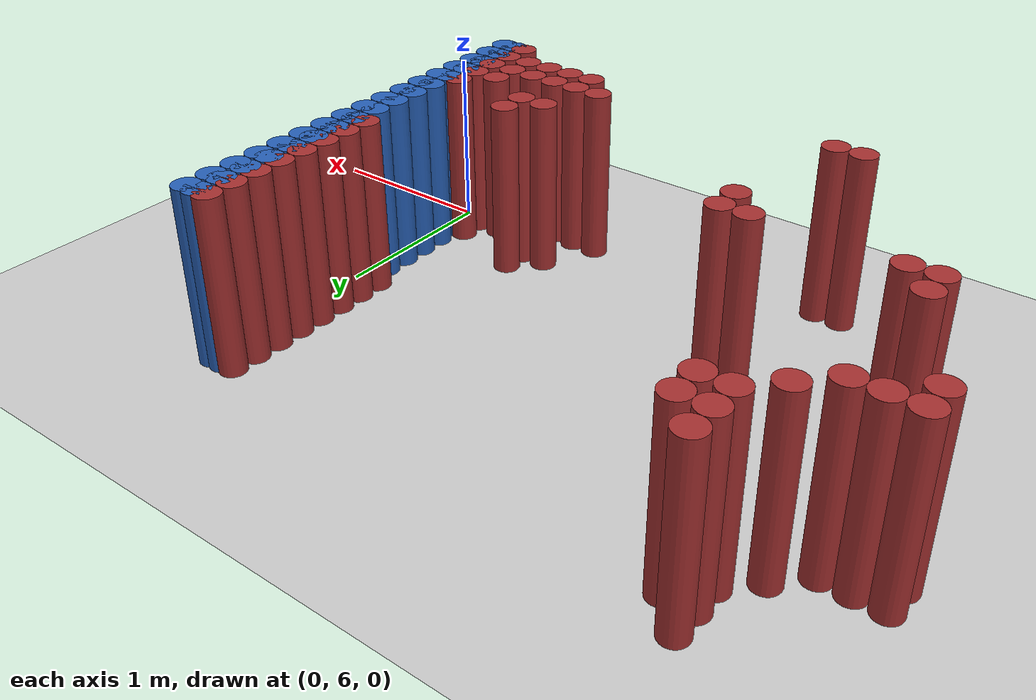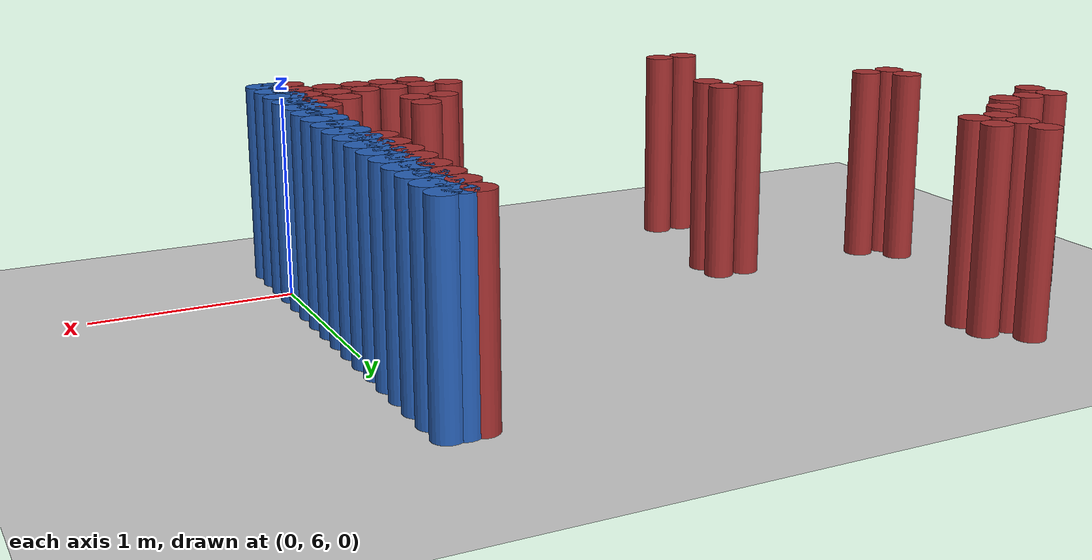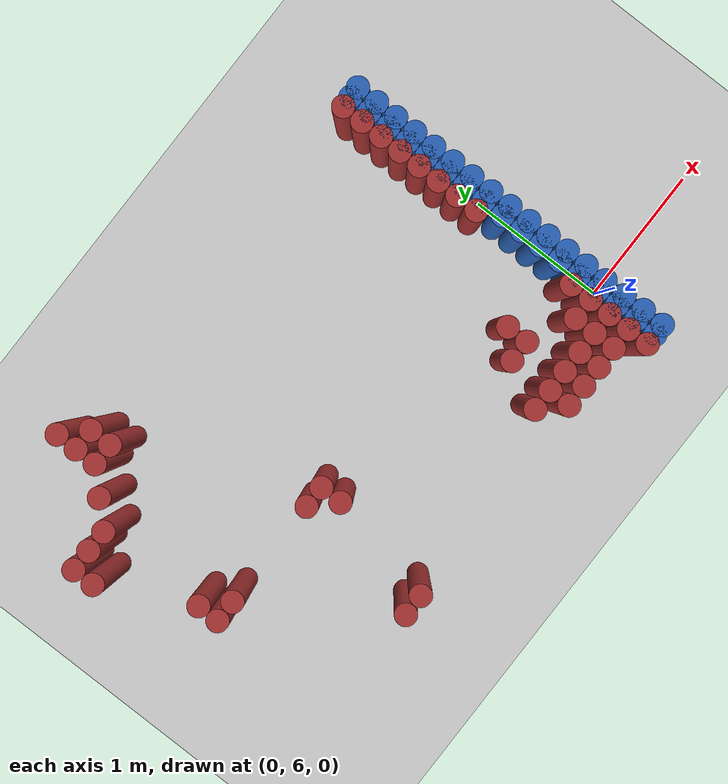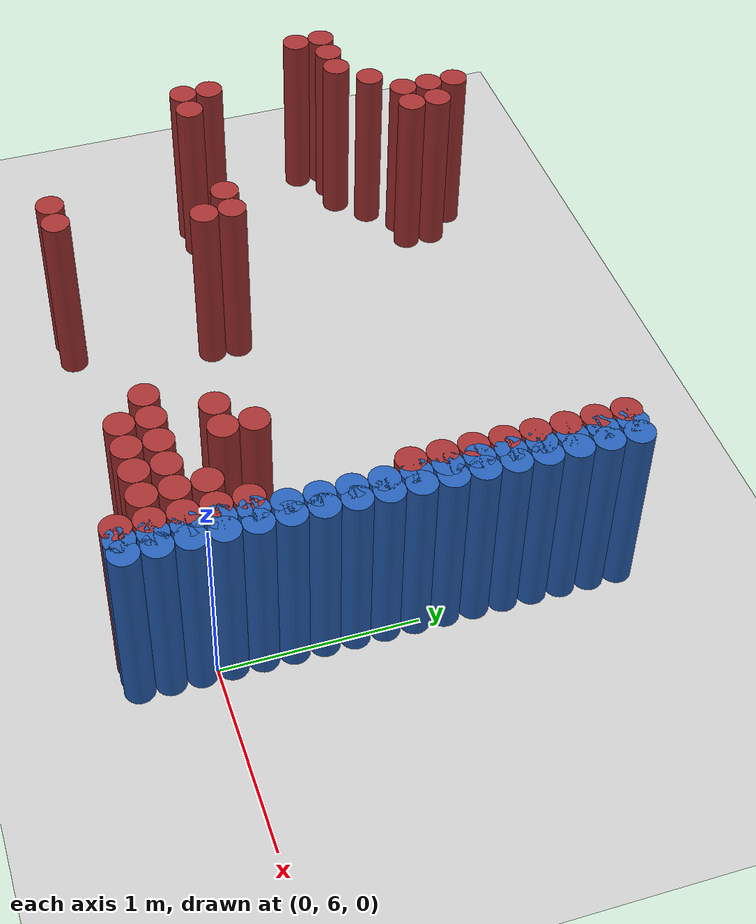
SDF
<sdf version="1.6">
 <world name="barn_world">
  <model name="ground_plane">
   <static>1</static>
   <link name="link">
    <collision name="collision">
     <geometry><plane><normal>0 0 1</normal><size>100 100</size></plane></geometry>
    </collision>
    <visual name="visual">
     <geometry><plane><normal>0 0 1</normal><size>100 100</size></plane></geometry>
     <material>
      <script><uri>file://media/materials/scripts/gazebo.material</uri><name>Gazebo/Grey</name></script>
     </material>
    </visual>
   </link>
  </model>
  <model name="unit_cylinder_185">
   <static>1</static>
   <pose>-3.4500 7.4250 0.5 0 0 0</pose>
   <link name="link">
    <collision name="collision">
     <geometry><cylinder><radius>0.075</radius><length>1</length></cylinder></geometry>
    </collision>
    <visual name="visual">
     <geometry><cylinder><radius>0.075</radius><length>1</length></cylinder></geometry>
     <material><ambient>0.648 0.192 0.192 1</ambient><diffuse>0.648 0.192 0.192 1</diffuse></material>
    </visual>
   </link>
  </model>
  <model name="unit_cylinder_186">
   <static>1</static>
   <pose>-3.4500 7.5750 0.5 0 0 0</pose>
   <link name="link">
    <collision name="collision">
     <geometry><cylinder><radius>0.075</radius><length>1</length></cylinder></geometry>
    </collision>
    <visual name="visual">
     <geometry><cylinder><radius>0.075</radius><length>1</length></cylinder></geometry>
     <material><ambient>0.648 0.192 0.192 1</ambient><diffuse>0.648 0.192 0.192 1</diffuse></material>
    </visual>
   </link>
  </model>
  <model name="unit_cylinder_187">
   <static>1</static>
   <pose>-3.3000 7.5750 0.5 0 0 0</pose>
   <link name="link">
    <collision name="collision">
     <geometry><cylinder><radius>0.075</radius><length>1</length></cylinder></geometry>
    </collision>
    <visual name="visual">
     <geometry><cylinder><radius>0.075</radius><length>1</length></cylinder></geometry>
     <material><ambient>0.648 0.192 0.192 1</ambient><diffuse>0.648 0.192 0.192 1</diffuse></material>
    </visual>
   </link>
  </model>
  <model name="unit_cylinder_189">
   <static>1</static>
   <pose>-3.1500 6.6750 0.5 0 0 0</pose>
   <link name="link">
    <collision name="collision">
     <geometry><cylinder><radius>0.075</radius><length>1</length></cylinder></geometry>
    </collision>
    <visual name="visual">
     <geometry><cylinder><radius>0.075</radius><length>1</length></cylinder></geometry>
     <material><ambient>0.648 0.192 0.192 1</ambient><diffuse>0.648 0.192 0.192 1</diffuse></material>
    </visual>
   </link>
  </model>
  <model name="unit_cylinder_190">
   <static>1</static>
   <pose>-3.1500 6.8250 0.5 0 0 0</pose>
   <link name="link">
    <collision name="collision">
     <geometry><cylinder><radius>0.075</radius><length>1</length></cylinder></geometry>
    </collision>
    <visual name="visual">
     <geometry><cylinder><radius>0.075</radius><length>1</length></cylinder></geometry>
     <material><ambient>0.648 0.192 0.192 1</ambient><diffuse>0.648 0.192 0.192 1</diffuse></material>
    </visual>
   </link>
  </model>
  <model name="unit_cylinder_191">
   <static>1</static>
   <pose>-3.1500 7.5750 0.5 0 0 0</pose>
   <link name="link">
    <collision name="collision">
     <geometry><cylinder><radius>0.075</radius><length>1</length></cylinder></geometry>
    </collision>
    <visual name="visual">
     <geometry><cylinder><radius>0.075</radius><length>1</length></cylinder></geometry>
     <material><ambient>0.648 0.192 0.192 1</ambient><diffuse>0.648 0.192 0.192 1</diffuse></material>
    </visual>
   </link>
  </model>
  <model name="unit_cylinder_194">
   <static>1</static>
   <pose>-3.0000 6.6750 0.5 0 0 0</pose>
   <link name="link">
    <collision name="collision">
     <geometry><cylinder><radius>0.075</radius><length>1</length></cylinder></geometry>
    </collision>
    <visual name="visual">
     <geometry><cylinder><radius>0.075</radius><length>1</length></cylinder></geometry>
     <material><ambient>0.648 0.192 0.192 1</ambient><diffuse>0.648 0.192 0.192 1</diffuse></material>
    </visual>
   </link>
  </model>
  <model name="unit_cylinder_195">
   <static>1</static>
   <pose>-3.0000 7.7250 0.5 0 0 0</pose>
   <link name="link">
    <collision name="collision">
     <geometry><cylinder><radius>0.075</radius><length>1</length></cylinder></geometry>
    </collision>
    <visual name="visual">
     <geometry><cylinder><radius>0.075</radius><length>1</length></cylinder></geometry>
     <material><ambient>0.648 0.192 0.192 1</ambient><diffuse>0.648 0.192 0.192 1</diffuse></material>
    </visual>
   </link>
  </model>
  <model name="unit_cylinder_197">
   <static>1</static>
   <pose>-2.8500 7.8750 0.5 0 0 0</pose>
   <link name="link">
    <collision name="collision">
     <geometry><cylinder><radius>0.075</radius><length>1</length></cylinder></geometry>
    </collision>
    <visual name="visual">
     <geometry><cylinder><radius>0.075</radius><length>1</length></cylinder></geometry>
     <material><ambient>0.648 0.192 0.192 1</ambient><diffuse>0.648 0.192 0.192 1</diffuse></material>
    </visual>
   </link>
  </model>
  <model name="unit_cylinder_198">
   <static>1</static>
   <pose>-2.8500 8.0250 0.5 0 0 0</pose>
   <link name="link">
    <collision name="collision">
     <geometry><cylinder><radius>0.075</radius><length>1</length></cylinder></geometry>
    </collision>
    <visual name="visual">
     <geometry><cylinder><radius>0.075</radius><length>1</length></cylinder></geometry>
     <material><ambient>0.648 0.192 0.192 1</ambient><diffuse>0.648 0.192 0.192 1</diffuse></material>
    </visual>
   </link>
  </model>
  <model name="unit_cylinder_199">
   <static>1</static>
   <pose>-2.8500 8.1750 0.5 0 0 0</pose>
   <link name="link">
    <collision name="collision">
     <geometry><cylinder><radius>0.075</radius><length>1</length></cylinder></geometry>
    </collision>
    <visual name="visual">
     <geometry><cylinder><radius>0.075</radius><length>1</length></cylinder></geometry>
     <material><ambient>0.648 0.192 0.192 1</ambient><diffuse>0.648 0.192 0.192 1</diffuse></material>
    </visual>
   </link>
  </model>
  <model name="unit_cylinder_200">
   <static>1</static>
   <pose>-2.7000 7.8750 0.5 0 0 0</pose>
   <link name="link">
    <collision name="collision">
     <geometry><cylinder><radius>0.075</radius><length>1</length></cylinder></geometry>
    </collision>
    <visual name="visual">
     <geometry><cylinder><radius>0.075</radius><length>1</length></cylinder></geometry>
     <material><ambient>0.648 0.192 0.192 1</ambient><diffuse>0.648 0.192 0.192 1</diffuse></material>
    </visual>
   </link>
  </model>
  <model name="unit_cylinder_201">
   <static>1</static>
   <pose>-2.7000 8.0250 0.5 0 0 0</pose>
   <link name="link">
    <collision name="collision">
     <geometry><cylinder><radius>0.075</radius><length>1</length></cylinder></geometry>
    </collision>
    <visual name="visual">
     <geometry><cylinder><radius>0.075</radius><length>1</length></cylinder></geometry>
     <material><ambient>0.648 0.192 0.192 1</ambient><diffuse>0.648 0.192 0.192 1</diffuse></material>
    </visual>
   </link>
  </model>
  <model name="unit_cylinder_202">
   <static>1</static>
   <pose>-2.4000 5.7750 0.5 0 0 0</pose>
   <link name="link">
    <collision name="collision">
     <geometry><cylinder><radius>0.075</radius><length>1</length></cylinder></geometry>
    </collision>
    <visual name="visual">
     <geometry><cylinder><radius>0.075</radius><length>1</length></cylinder></geometry>
     <material><ambient>0.648 0.192 0.192 1</ambient><diffuse>0.648 0.192 0.192 1</diffuse></material>
    </visual>
   </link>
  </model>
  <model name="unit_cylinder_204">
   <static>1</static>
   <pose>-2.2500 5.7750 0.5 0 0 0</pose>
   <link name="link">
    <collision name="collision">
     <geometry><cylinder><radius>0.075</radius><length>1</length></cylinder></geometry>
    </collision>
    <visual name="visual">
     <geometry><cylinder><radius>0.075</radius><length>1</length></cylinder></geometry>
     <material><ambient>0.648 0.192 0.192 1</ambient><diffuse>0.648 0.192 0.192 1</diffuse></material>
    </visual>
   </link>
  </model>
  <model name="unit_cylinder_205">
   <static>1</static>
   <pose>-2.2500 6.6750 0.5 0 0 0</pose>
   <link name="link">
    <collision name="collision">
     <geometry><cylinder><radius>0.075</radius><length>1</length></cylinder></geometry>
    </collision>
    <visual name="visual">
     <geometry><cylinder><radius>0.075</radius><length>1</length></cylinder></geometry>
     <material><ambient>0.648 0.192 0.192 1</ambient><diffuse>0.648 0.192 0.192 1</diffuse></material>
    </visual>
   </link>
  </model>
  <model name="unit_cylinder_209">
   <static>1</static>
   <pose>-2.1000 6.5250 0.5 0 0 0</pose>
   <link name="link">
    <collision name="collision">
     <geometry><cylinder><radius>0.075</radius><length>1</length></cylinder></geometry>
    </collision>
    <visual name="visual">
     <geometry><cylinder><radius>0.075</radius><length>1</length></cylinder></geometry>
     <material><ambient>0.648 0.192 0.192 1</ambient><diffuse>0.648 0.192 0.192 1</diffuse></material>
    </visual>
   </link>
  </model>
  <model name="unit_cylinder_210">
   <static>1</static>
   <pose>-2.1000 6.6750 0.5 0 0 0</pose>
   <link name="link">
    <collision name="collision">
     <geometry><cylinder><radius>0.075</radius><length>1</length></cylinder></geometry>
    </collision>
    <visual name="visual">
     <geometry><cylinder><radius>0.075</radius><length>1</length></cylinder></geometry>
     <material><ambient>0.648 0.192 0.192 1</ambient><diffuse>0.648 0.192 0.192 1</diffuse></material>
    </visual>
   </link>
  </model>
  <model name="unit_cylinder_214">
   <static>1</static>
   <pose>-0.9000 5.9250 0.5 0 0 0</pose>
   <link name="link">
    <collision name="collision">
     <geometry><cylinder><radius>0.075</radius><length>1</length></cylinder></geometry>
    </collision>
    <visual name="visual">
     <geometry><cylinder><radius>0.075</radius><length>1</length></cylinder></geometry>
     <material><ambient>0.648 0.192 0.192 1</ambient><diffuse>0.648 0.192 0.192 1</diffuse></material>
    </visual>
   </link>
  </model>
  <model name="unit_cylinder_217">
   <static>1</static>
   <pose>-0.7500 5.7750 0.5 0 0 0</pose>
   <link name="link">
    <collision name="collision">
     <geometry><cylinder><radius>0.075</radius><length>1</length></cylinder></geometry>
    </collision>
    <visual name="visual">
     <geometry><cylinder><radius>0.075</radius><length>1</length></cylinder></geometry>
     <material><ambient>0.648 0.192 0.192 1</ambient><diffuse>0.648 0.192 0.192 1</diffuse></material>
    </visual>
   </link>
  </model>
  <model name="unit_cylinder_218">
   <static>1</static>
   <pose>-0.7500 5.9250 0.5 0 0 0</pose>
   <link name="link">
    <collision name="collision">
     <geometry><cylinder><radius>0.075</radius><length>1</length></cylinder></geometry>
    </collision>
    <visual name="visual">
     <geometry><cylinder><radius>0.075</radius><length>1</length></cylinder></geometry>
     <material><ambient>0.648 0.192 0.192 1</ambient><diffuse>0.648 0.192 0.192 1</diffuse></material>
    </visual>
   </link>
  </model>
  <model name="unit_cylinder_219">
   <static>1</static>
   <pose>-0.7500 6.2250 0.5 0 0 0</pose>
   <link name="link">
    <collision name="collision">
     <geometry><cylinder><radius>0.075</radius><length>1</length></cylinder></geometry>
    </collision>
    <visual name="visual">
     <geometry><cylinder><radius>0.075</radius><length>1</length></cylinder></geometry>
     <material><ambient>0.648 0.192 0.192 1</ambient><diffuse>0.648 0.192 0.192 1</diffuse></material>
    </visual>
   </link>
  </model>
  <model name="unit_cylinder_227">
   <static>1</static>
   <pose>-0.6000 5.7750 0.5 0 0 0</pose>
   <link name="link">
    <collision name="collision">
     <geometry><cylinder><radius>0.075</radius><length>1</length></cylinder></geometry>
    </collision>
    <visual name="visual">
     <geometry><cylinder><radius>0.075</radius><length>1</length></cylinder></geometry>
     <material><ambient>0.648 0.192 0.192 1</ambient><diffuse>0.648 0.192 0.192 1</diffuse></material>
    </visual>
   </link>
  </model>
  <model name="unit_cylinder_228">
   <static>1</static>
   <pose>-0.6000 5.9250 0.5 0 0 0</pose>
   <link name="link">
    <collision name="collision">
     <geometry><cylinder><radius>0.075</radius><length>1</length></cylinder></geometry>
    </collision>
    <visual name="visual">
     <geometry><cylinder><radius>0.075</radius><length>1</length></cylinder></geometry>
     <material><ambient>0.648 0.192 0.192 1</ambient><diffuse>0.648 0.192 0.192 1</diffuse></material>
    </visual>
   </link>
  </model>
  <model name="unit_cylinder_229">
   <static>1</static>
   <pose>-0.6000 6.2250 0.5 0 0 0</pose>
   <link name="link">
    <collision name="collision">
     <geometry><cylinder><radius>0.075</radius><length>1</length></cylinder></geometry>
    </collision>
    <visual name="visual">
     <geometry><cylinder><radius>0.075</radius><length>1</length></cylinder></geometry>
     <material><ambient>0.648 0.192 0.192 1</ambient><diffuse>0.648 0.192 0.192 1</diffuse></material>
    </visual>
   </link>
  </model>
  <model name="unit_cylinder_230">
   <static>1</static>
   <pose>-0.6000 6.3750 0.5 0 0 0</pose>
   <link name="link">
    <collision name="collision">
     <geometry><cylinder><radius>0.075</radius><length>1</length></cylinder></geometry>
    </collision>
    <visual name="visual">
     <geometry><cylinder><radius>0.075</radius><length>1</length></cylinder></geometry>
     <material><ambient>0.648 0.192 0.192 1</ambient><diffuse>0.648 0.192 0.192 1</diffuse></material>
    </visual>
   </link>
  </model>
  <model name="unit_cylinder_238">
   <static>1</static>
   <pose>-0.4500 5.7750 0.5 0 0 0</pose>
   <link name="link">
    <collision name="collision">
     <geometry><cylinder><radius>0.075</radius><length>1</length></cylinder></geometry>
    </collision>
    <visual name="visual">
     <geometry><cylinder><radius>0.075</radius><length>1</length></cylinder></geometry>
     <material><ambient>0.648 0.192 0.192 1</ambient><diffuse>0.648 0.192 0.192 1</diffuse></material>
    </visual>
   </link>
  </model>
  <model name="unit_cylinder_239">
   <static>1</static>
   <pose>-0.4500 5.9250 0.5 0 0 0</pose>
   <link name="link">
    <collision name="collision">
     <geometry><cylinder><radius>0.075</radius><length>1</length></cylinder></geometry>
    </collision>
    <visual name="visual">
     <geometry><cylinder><radius>0.075</radius><length>1</length></cylinder></geometry>
     <material><ambient>0.648 0.192 0.192 1</ambient><diffuse>0.648 0.192 0.192 1</diffuse></material>
    </visual>
   </link>
  </model>
  <model name="unit_cylinder_246">
   <static>1</static>
   <pose>-0.3000 5.7750 0.5 0 0 0</pose>
   <link name="link">
    <collision name="collision">
     <geometry><cylinder><radius>0.075</radius><length>1</length></cylinder></geometry>
    </collision>
    <visual name="visual">
     <geometry><cylinder><radius>0.075</radius><length>1</length></cylinder></geometry>
     <material><ambient>0.648 0.192 0.192 1</ambient><diffuse>0.648 0.192 0.192 1</diffuse></material>
    </visual>
   </link>
  </model>
  <model name="unit_cylinder_247">
   <static>1</static>
   <pose>-0.3000 5.9250 0.5 0 0 0</pose>
   <link name="link">
    <collision name="collision">
     <geometry><cylinder><radius>0.075</radius><length>1</length></cylinder></geometry>
    </collision>
    <visual name="visual">
     <geometry><cylinder><radius>0.075</radius><length>1</length></cylinder></geometry>
     <material><ambient>0.648 0.192 0.192 1</ambient><diffuse>0.648 0.192 0.192 1</diffuse></material>
    </visual>
   </link>
  </model>
  <model name="unit_cylinder_248">
   <static>1</static>
   <pose>-0.3000 6.0750 0.5 0 0 0</pose>
   <link name="link">
    <collision name="collision">
     <geometry><cylinder><radius>0.075</radius><length>1</length></cylinder></geometry>
    </collision>
    <visual name="visual">
     <geometry><cylinder><radius>0.075</radius><length>1</length></cylinder></geometry>
     <material><ambient>0.648 0.192 0.192 1</ambient><diffuse>0.648 0.192 0.192 1</diffuse></material>
    </visual>
   </link>
  </model>
  <model name="unit_cylinder_255">
   <static>1</static>
   <pose>-0.1500 5.6250 0.5 0 0 0</pose>
   <link name="link">
    <collision name="collision">
     <geometry><cylinder><radius>0.075</radius><length>1</length></cylinder></geometry>
    </collision>
    <visual name="visual">
     <geometry><cylinder><radius>0.075</radius><length>1</length></cylinder></geometry>
     <material><ambient>0.648 0.192 0.192 1</ambient><diffuse>0.648 0.192 0.192 1</diffuse></material>
    </visual>
   </link>
  </model>
  <model name="unit_cylinder_256">
   <static>1</static>
   <pose>-0.1500 5.7750 0.5 0 0 0</pose>
   <link name="link">
    <collision name="collision">
     <geometry><cylinder><radius>0.075</radius><length>1</length></cylinder></geometry>
    </collision>
    <visual name="visual">
     <geometry><cylinder><radius>0.075</radius><length>1</length></cylinder></geometry>
     <material><ambient>0.648 0.192 0.192 1</ambient><diffuse>0.648 0.192 0.192 1</diffuse></material>
    </visual>
   </link>
  </model>
  <model name="unit_cylinder_257">
   <static>1</static>
   <pose>-0.1500 5.9250 0.5 0 0 0</pose>
   <link name="link">
    <collision name="collision">
     <geometry><cylinder><radius>0.075</radius><length>1</length></cylinder></geometry>
    </collision>
    <visual name="visual">
     <geometry><cylinder><radius>0.075</radius><length>1</length></cylinder></geometry>
     <material><ambient>0.648 0.192 0.192 1</ambient><diffuse>0.648 0.192 0.192 1</diffuse></material>
    </visual>
   </link>
  </model>
  <model name="unit_cylinder_258">
   <static>1</static>
   <pose>-0.1500 6.0750 0.5 0 0 0</pose>
   <link name="link">
    <collision name="collision">
     <geometry><cylinder><radius>0.075</radius><length>1</length></cylinder></geometry>
    </collision>
    <visual name="visual">
     <geometry><cylinder><radius>0.075</radius><length>1</length></cylinder></geometry>
     <material><ambient>0.648 0.192 0.192 1</ambient><diffuse>0.648 0.192 0.192 1</diffuse></material>
    </visual>
   </link>
  </model>
  <model name="unit_cylinder_259">
   <static>1</static>
   <pose>-0.1500 6.2250 0.5 0 0 0</pose>
   <link name="link">
    <collision name="collision">
     <geometry><cylinder><radius>0.075</radius><length>1</length></cylinder></geometry>
    </collision>
    <visual name="visual">
     <geometry><cylinder><radius>0.075</radius><length>1</length></cylinder></geometry>
     <material><ambient>0.648 0.192 0.192 1</ambient><diffuse>0.648 0.192 0.192 1</diffuse></material>
    </visual>
   </link>
  </model>
  <model name="unit_cylinder_260">
   <static>1</static>
   <pose>-0.1500 6.9750 0.5 0 0 0</pose>
   <link name="link">
    <collision name="collision">
     <geometry><cylinder><radius>0.075</radius><length>1</length></cylinder></geometry>
    </collision>
    <visual name="visual">
     <geometry><cylinder><radius>0.075</radius><length>1</length></cylinder></geometry>
     <material><ambient>0.648 0.192 0.192 1</ambient><diffuse>0.648 0.192 0.192 1</diffuse></material>
    </visual>
   </link>
  </model>
  <model name="unit_cylinder_261">
   <static>1</static>
   <pose>-0.1500 7.1250 0.5 0 0 0</pose>
   <link name="link">
    <collision name="collision">
     <geometry><cylinder><radius>0.075</radius><length>1</length></cylinder></geometry>
    </collision>
    <visual name="visual">
     <geometry><cylinder><radius>0.075</radius><length>1</length></cylinder></geometry>
     <material><ambient>0.648 0.192 0.192 1</ambient><diffuse>0.648 0.192 0.192 1</diffuse></material>
    </visual>
   </link>
  </model>
  <model name="unit_cylinder_262">
   <static>1</static>
   <pose>-0.1500 7.2750 0.5 0 0 0</pose>
   <link name="link">
    <collision name="collision">
     <geometry><cylinder><radius>0.075</radius><length>1</length></cylinder></geometry>
    </collision>
    <visual name="visual">
     <geometry><cylinder><radius>0.075</radius><length>1</length></cylinder></geometry>
     <material><ambient>0.648 0.192 0.192 1</ambient><diffuse>0.648 0.192 0.192 1</diffuse></material>
    </visual>
   </link>
  </model>
  <model name="unit_cylinder_263">
   <static>1</static>
   <pose>-0.1500 7.4250 0.5 0 0 0</pose>
   <link name="link">
    <collision name="collision">
     <geometry><cylinder><radius>0.075</radius><length>1</length></cylinder></geometry>
    </collision>
    <visual name="visual">
     <geometry><cylinder><radius>0.075</radius><length>1</length></cylinder></geometry>
     <material><ambient>0.648 0.192 0.192 1</ambient><diffuse>0.648 0.192 0.192 1</diffuse></material>
    </visual>
   </link>
  </model>
  <model name="unit_cylinder_264">
   <static>1</static>
   <pose>-0.1500 7.5750 0.5 0 0 0</pose>
   <link name="link">
    <collision name="collision">
     <geometry><cylinder><radius>0.075</radius><length>1</length></cylinder></geometry>
    </collision>
    <visual name="visual">
     <geometry><cylinder><radius>0.075</radius><length>1</length></cylinder></geometry>
     <material><ambient>0.648 0.192 0.192 1</ambient><diffuse>0.648 0.192 0.192 1</diffuse></material>
    </visual>
   </link>
  </model>
  <model name="unit_cylinder_265">
   <static>1</static>
   <pose>-0.1500 7.7250 0.5 0 0 0</pose>
   <link name="link">
    <collision name="collision">
     <geometry><cylinder><radius>0.075</radius><length>1</length></cylinder></geometry>
    </collision>
    <visual name="visual">
     <geometry><cylinder><radius>0.075</radius><length>1</length></cylinder></geometry>
     <material><ambient>0.648 0.192 0.192 1</ambient><diffuse>0.648 0.192 0.192 1</diffuse></material>
    </visual>
   </link>
  </model>
  <model name="unit_cylinder_266">
   <static>1</static>
   <pose>-0.1500 7.8750 0.5 0 0 0</pose>
   <link name="link">
    <collision name="collision">
     <geometry><cylinder><radius>0.075</radius><length>1</length></cylinder></geometry>
    </collision>
    <visual name="visual">
     <geometry><cylinder><radius>0.075</radius><length>1</length></cylinder></geometry>
     <material><ambient>0.648 0.192 0.192 1</ambient><diffuse>0.648 0.192 0.192 1</diffuse></material>
    </visual>
   </link>
  </model>
  <model name="unit_cylinder_267">
   <static>1</static>
   <pose>-0.1500 8.0250 0.5 0 0 0</pose>
   <link name="link">
    <collision name="collision">
     <geometry><cylinder><radius>0.075</radius><length>1</length></cylinder></geometry>
    </collision>
    <visual name="visual">
     <geometry><cylinder><radius>0.075</radius><length>1</length></cylinder></geometry>
     <material><ambient>0.648 0.192 0.192 1</ambient><diffuse>0.648 0.192 0.192 1</diffuse></material>
    </visual>
   </link>
  </model>
  <model name="unit_cylinder_277">
   <static>1</static>
   <pose>0.0000 5.6250 0.5 0 0 0</pose>
   <link name="link">
    <collision name="collision">
     <geometry><cylinder><radius>0.075</radius><length>1</length></cylinder></geometry>
    </collision>
    <visual name="visual">
     <geometry><cylinder><radius>0.075</radius><length>1</length></cylinder></geometry>
     <material><ambient>0.152 0.379 0.72 1</ambient><diffuse>0.152 0.379 0.72 1</diffuse></material>
    </visual>
   </link>
  </model>
  <model name="unit_cylinder_278">
   <static>1</static>
   <pose>0.0000 5.7750 0.5 0 0 0</pose>
   <link name="link">
    <collision name="collision">
     <geometry><cylinder><radius>0.075</radius><length>1</length></cylinder></geometry>
    </collision>
    <visual name="visual">
     <geometry><cylinder><radius>0.075</radius><length>1</length></cylinder></geometry>
     <material><ambient>0.152 0.379 0.72 1</ambient><diffuse>0.152 0.379 0.72 1</diffuse></material>
    </visual>
   </link>
  </model>
  <model name="unit_cylinder_279">
   <static>1</static>
   <pose>0.0000 5.9250 0.5 0 0 0</pose>
   <link name="link">
    <collision name="collision">
     <geometry><cylinder><radius>0.075</radius><length>1</length></cylinder></geometry>
    </collision>
    <visual name="visual">
     <geometry><cylinder><radius>0.075</radius><length>1</length></cylinder></geometry>
     <material><ambient>0.152 0.379 0.72 1</ambient><diffuse>0.152 0.379 0.72 1</diffuse></material>
    </visual>
   </link>
  </model>
  <model name="unit_cylinder_280">
   <static>1</static>
   <pose>0.0000 6.0750 0.5 0 0 0</pose>
   <link name="link">
    <collision name="collision">
     <geometry><cylinder><radius>0.075</radius><length>1</length></cylinder></geometry>
    </collision>
    <visual name="visual">
     <geometry><cylinder><radius>0.075</radius><length>1</length></cylinder></geometry>
     <material><ambient>0.152 0.379 0.72 1</ambient><diffuse>0.152 0.379 0.72 1</diffuse></material>
    </visual>
   </link>
  </model>
  <model name="unit_cylinder_281">
   <static>1</static>
   <pose>0.0000 6.2250 0.5 0 0 0</pose>
   <link name="link">
    <collision name="collision">
     <geometry><cylinder><radius>0.075</radius><length>1</length></cylinder></geometry>
    </collision>
    <visual name="visual">
     <geometry><cylinder><radius>0.075</radius><length>1</length></cylinder></geometry>
     <material><ambient>0.152 0.379 0.72 1</ambient><diffuse>0.152 0.379 0.72 1</diffuse></material>
    </visual>
   </link>
  </model>
  <model name="unit_cylinder_282">
   <static>1</static>
   <pose>0.0000 6.3750 0.5 0 0 0</pose>
   <link name="link">
    <collision name="collision">
     <geometry><cylinder><radius>0.075</radius><length>1</length></cylinder></geometry>
    </collision>
    <visual name="visual">
     <geometry><cylinder><radius>0.075</radius><length>1</length></cylinder></geometry>
     <material><ambient>0.152 0.379 0.72 1</ambient><diffuse>0.152 0.379 0.72 1</diffuse></material>
    </visual>
   </link>
  </model>
  <model name="unit_cylinder_283">
   <static>1</static>
   <pose>0.0000 6.5250 0.5 0 0 0</pose>
   <link name="link">
    <collision name="collision">
     <geometry><cylinder><radius>0.075</radius><length>1</length></cylinder></geometry>
    </collision>
    <visual name="visual">
     <geometry><cylinder><radius>0.075</radius><length>1</length></cylinder></geometry>
     <material><ambient>0.152 0.379 0.72 1</ambient><diffuse>0.152 0.379 0.72 1</diffuse></material>
    </visual>
   </link>
  </model>
  <model name="unit_cylinder_284">
   <static>1</static>
   <pose>0.0000 6.6750 0.5 0 0 0</pose>
   <link name="link">
    <collision name="collision">
     <geometry><cylinder><radius>0.075</radius><length>1</length></cylinder></geometry>
    </collision>
    <visual name="visual">
     <geometry><cylinder><radius>0.075</radius><length>1</length></cylinder></geometry>
     <material><ambient>0.152 0.379 0.72 1</ambient><diffuse>0.152 0.379 0.72 1</diffuse></material>
    </visual>
   </link>
  </model>
  <model name="unit_cylinder_285">
   <static>1</static>
   <pose>0.0000 6.8250 0.5 0 0 0</pose>
   <link name="link">
    <collision name="collision">
     <geometry><cylinder><radius>0.075</radius><length>1</length></cylinder></geometry>
    </collision>
    <visual name="visual">
     <geometry><cylinder><radius>0.075</radius><length>1</length></cylinder></geometry>
     <material><ambient>0.152 0.379 0.72 1</ambient><diffuse>0.152 0.379 0.72 1</diffuse></material>
    </visual>
   </link>
  </model>
  <model name="unit_cylinder_286">
   <static>1</static>
   <pose>0.0000 6.9750 0.5 0 0 0</pose>
   <link name="link">
    <collision name="collision">
     <geometry><cylinder><radius>0.075</radius><length>1</length></cylinder></geometry>
    </collision>
    <visual name="visual">
     <geometry><cylinder><radius>0.075</radius><length>1</length></cylinder></geometry>
     <material><ambient>0.152 0.379 0.72 1</ambient><diffuse>0.152 0.379 0.72 1</diffuse></material>
    </visual>
   </link>
  </model>
  <model name="unit_cylinder_287">
   <static>1</static>
   <pose>0.0000 7.1250 0.5 0 0 0</pose>
   <link name="link">
    <collision name="collision">
     <geometry><cylinder><radius>0.075</radius><length>1</length></cylinder></geometry>
    </collision>
    <visual name="visual">
     <geometry><cylinder><radius>0.075</radius><length>1</length></cylinder></geometry>
     <material><ambient>0.152 0.379 0.72 1</ambient><diffuse>0.152 0.379 0.72 1</diffuse></material>
    </visual>
   </link>
  </model>
  <model name="unit_cylinder_288">
   <static>1</static>
   <pose>0.0000 7.2750 0.5 0 0 0</pose>
   <link name="link">
    <collision name="collision">
     <geometry><cylinder><radius>0.075</radius><length>1</length></cylinder></geometry>
    </collision>
    <visual name="visual">
     <geometry><cylinder><radius>0.075</radius><length>1</length></cylinder></geometry>
     <material><ambient>0.152 0.379 0.72 1</ambient><diffuse>0.152 0.379 0.72 1</diffuse></material>
    </visual>
   </link>
  </model>
  <model name="unit_cylinder_289">
   <static>1</static>
   <pose>0.0000 7.4250 0.5 0 0 0</pose>
   <link name="link">
    <collision name="collision">
     <geometry><cylinder><radius>0.075</radius><length>1</length></cylinder></geometry>
    </collision>
    <visual name="visual">
     <geometry><cylinder><radius>0.075</radius><length>1</length></cylinder></geometry>
     <material><ambient>0.152 0.379 0.72 1</ambient><diffuse>0.152 0.379 0.72 1</diffuse></material>
    </visual>
   </link>
  </model>
  <model name="unit_cylinder_290">
   <static>1</static>
   <pose>0.0000 7.5750 0.5 0 0 0</pose>
   <link name="link">
    <collision name="collision">
     <geometry><cylinder><radius>0.075</radius><length>1</length></cylinder></geometry>
    </collision>
    <visual name="visual">
     <geometry><cylinder><radius>0.075</radius><length>1</length></cylinder></geometry>
     <material><ambient>0.152 0.379 0.72 1</ambient><diffuse>0.152 0.379 0.72 1</diffuse></material>
    </visual>
   </link>
  </model>
  <model name="unit_cylinder_291">
   <static>1</static>
   <pose>0.0000 7.7250 0.5 0 0 0</pose>
   <link name="link">
    <collision name="collision">
     <geometry><cylinder><radius>0.075</radius><length>1</length></cylinder></geometry>
    </collision>
    <visual name="visual">
     <geometry><cylinder><radius>0.075</radius><length>1</length></cylinder></geometry>
     <material><ambient>0.152 0.379 0.72 1</ambient><diffuse>0.152 0.379 0.72 1</diffuse></material>
    </visual>
   </link>
  </model>
  <model name="unit_cylinder_292">
   <static>1</static>
   <pose>0.0000 7.8750 0.5 0 0 0</pose>
   <link name="link">
    <collision name="collision">
     <geometry><cylinder><radius>0.075</radius><length>1</length></cylinder></geometry>
    </collision>
    <visual name="visual">
     <geometry><cylinder><radius>0.075</radius><length>1</length></cylinder></geometry>
     <material><ambient>0.152 0.379 0.72 1</ambient><diffuse>0.152 0.379 0.72 1</diffuse></material>
    </visual>
   </link>
  </model>
  <model name="unit_cylinder_293">
   <static>1</static>
   <pose>0.0000 8.0250 0.5 0 0 0</pose>
   <link name="link">
    <collision name="collision">
     <geometry><cylinder><radius>0.075</radius><length>1</length></cylinder></geometry>
    </collision>
    <visual name="visual">
     <geometry><cylinder><radius>0.075</radius><length>1</length></cylinder></geometry>
     <material><ambient>0.152 0.379 0.72 1</ambient><diffuse>0.152 0.379 0.72 1</diffuse></material>
    </visual>
   </link>
  </model>
  <model name="unit_cylinder_340">
   <static>1</static>
   <pose>-0.0750 5.6250 0.5 0 0 0</pose>
   <link name="link">
    <collision name="collision">
     <geometry><cylinder><radius>0.075</radius><length>1</length></cylinder></geometry>
    </collision>
    <visual name="visual">
     <geometry><cylinder><radius>0.075</radius><length>1</length></cylinder></geometry>
     <material><ambient>0.152 0.379 0.72 1</ambient><diffuse>0.152 0.379 0.72 1</diffuse></material>
    </visual>
   </link>
  </model>
  <model name="unit_cylinder_342">
   <static>1</static>
   <pose>-0.0750 5.7750 0.5 0 0 0</pose>
   <link name="link">
    <collision name="collision">
     <geometry><cylinder><radius>0.075</radius><length>1</length></cylinder></geometry>
    </collision>
    <visual name="visual">
     <geometry><cylinder><radius>0.075</radius><length>1</length></cylinder></geometry>
     <material><ambient>0.152 0.379 0.72 1</ambient><diffuse>0.152 0.379 0.72 1</diffuse></material>
    </visual>
   </link>
  </model>
  <model name="unit_cylinder_344">
   <static>1</static>
   <pose>-0.0750 5.9250 0.5 0 0 0</pose>
   <link name="link">
    <collision name="collision">
     <geometry><cylinder><radius>0.075</radius><length>1</length></cylinder></geometry>
    </collision>
    <visual name="visual">
     <geometry><cylinder><radius>0.075</radius><length>1</length></cylinder></geometry>
     <material><ambient>0.152 0.379 0.72 1</ambient><diffuse>0.152 0.379 0.72 1</diffuse></material>
    </visual>
   </link>
  </model>
  <model name="unit_cylinder_346">
   <static>1</static>
   <pose>-0.0750 6.0750 0.5 0 0 0</pose>
   <link name="link">
    <collision name="collision">
     <geometry><cylinder><radius>0.075</radius><length>1</length></cylinder></geometry>
    </collision>
    <visual name="visual">
     <geometry><cylinder><radius>0.075</radius><length>1</length></cylinder></geometry>
     <material><ambient>0.152 0.379 0.72 1</ambient><diffuse>0.152 0.379 0.72 1</diffuse></material>
    </visual>
   </link>
  </model>
  <model name="unit_cylinder_348">
   <static>1</static>
   <pose>-0.0750 6.2250 0.5 0 0 0</pose>
   <link name="link">
    <collision name="collision">
     <geometry><cylinder><radius>0.075</radius><length>1</length></cylinder></geometry>
    </collision>
    <visual name="visual">
     <geometry><cylinder><radius>0.075</radius><length>1</length></cylinder></geometry>
     <material><ambient>0.152 0.379 0.72 1</ambient><diffuse>0.152 0.379 0.72 1</diffuse></material>
    </visual>
   </link>
  </model>
  <model name="unit_cylinder_350">
   <static>1</static>
   <pose>-0.0750 6.3750 0.5 0 0 0</pose>
   <link name="link">
    <collision name="collision">
     <geometry><cylinder><radius>0.075</radius><length>1</length></cylinder></geometry>
    </collision>
    <visual name="visual">
     <geometry><cylinder><radius>0.075</radius><length>1</length></cylinder></geometry>
     <material><ambient>0.152 0.379 0.72 1</ambient><diffuse>0.152 0.379 0.72 1</diffuse></material>
    </visual>
   </link>
  </model>
  <model name="unit_cylinder_352">
   <static>1</static>
   <pose>-0.0750 6.5250 0.5 0 0 0</pose>
   <link name="link">
    <collision name="collision">
     <geometry><cylinder><radius>0.075</radius><length>1</length></cylinder></geometry>
    </collision>
    <visual name="visual">
     <geometry><cylinder><radius>0.075</radius><length>1</length></cylinder></geometry>
     <material><ambient>0.152 0.379 0.72 1</ambient><diffuse>0.152 0.379 0.72 1</diffuse></material>
    </visual>
   </link>
  </model>
  <model name="unit_cylinder_354">
   <static>1</static>
   <pose>-0.0750 6.6750 0.5 0 0 0</pose>
   <link name="link">
    <collision name="collision">
     <geometry><cylinder><radius>0.075</radius><length>1</length></cylinder></geometry>
    </collision>
    <visual name="visual">
     <geometry><cylinder><radius>0.075</radius><length>1</length></cylinder></geometry>
     <material><ambient>0.152 0.379 0.72 1</ambient><diffuse>0.152 0.379 0.72 1</diffuse></material>
    </visual>
   </link>
  </model>
  <model name="unit_cylinder_356">
   <static>1</static>
   <pose>-0.0750 6.8250 0.5 0 0 0</pose>
   <link name="link">
    <collision name="collision">
     <geometry><cylinder><radius>0.075</radius><length>1</length></cylinder></geometry>
    </collision>
    <visual name="visual">
     <geometry><cylinder><radius>0.075</radius><length>1</length></cylinder></geometry>
     <material><ambient>0.152 0.379 0.72 1</ambient><diffuse>0.152 0.379 0.72 1</diffuse></material>
    </visual>
   </link>
  </model>
  <model name="unit_cylinder_358">
   <static>1</static>
   <pose>-0.0750 6.9750 0.5 0 0 0</pose>
   <link name="link">
    <collision name="collision">
     <geometry><cylinder><radius>0.075</radius><length>1</length></cylinder></geometry>
    </collision>
    <visual name="visual">
     <geometry><cylinder><radius>0.075</radius><length>1</length></cylinder></geometry>
     <material><ambient>0.152 0.379 0.72 1</ambient><diffuse>0.152 0.379 0.72 1</diffuse></material>
    </visual>
   </link>
  </model>
  <model name="unit_cylinder_360">
   <static>1</static>
   <pose>-0.0750 7.1250 0.5 0 0 0</pose>
   <link name="link">
    <collision name="collision">
     <geometry><cylinder><radius>0.075</radius><length>1</length></cylinder></geometry>
    </collision>
    <visual name="visual">
     <geometry><cylinder><radius>0.075</radius><length>1</length></cylinder></geometry>
     <material><ambient>0.152 0.379 0.72 1</ambient><diffuse>0.152 0.379 0.72 1</diffuse></material>
    </visual>
   </link>
  </model>
  <model name="unit_cylinder_362">
   <static>1</static>
   <pose>-0.0750 7.2750 0.5 0 0 0</pose>
   <link name="link">
    <collision name="collision">
     <geometry><cylinder><radius>0.075</radius><length>1</length></cylinder></geometry>
    </collision>
    <visual name="visual">
     <geometry><cylinder><radius>0.075</radius><length>1</length></cylinder></geometry>
     <material><ambient>0.152 0.379 0.72 1</ambient><diffuse>0.152 0.379 0.72 1</diffuse></material>
    </visual>
   </link>
  </model>
  <model name="unit_cylinder_364">
   <static>1</static>
   <pose>-0.0750 7.4250 0.5 0 0 0</pose>
   <link name="link">
    <collision name="collision">
     <geometry><cylinder><radius>0.075</radius><length>1</length></cylinder></geometry>
    </collision>
    <visual name="visual">
     <geometry><cylinder><radius>0.075</radius><length>1</length></cylinder></geometry>
     <material><ambient>0.152 0.379 0.72 1</ambient><diffuse>0.152 0.379 0.72 1</diffuse></material>
    </visual>
   </link>
  </model>
  <model name="unit_cylinder_366">
   <static>1</static>
   <pose>-0.0750 7.5750 0.5 0 0 0</pose>
   <link name="link">
    <collision name="collision">
     <geometry><cylinder><radius>0.075</radius><length>1</length></cylinder></geometry>
    </collision>
    <visual name="visual">
     <geometry><cylinder><radius>0.075</radius><length>1</length></cylinder></geometry>
     <material><ambient>0.152 0.379 0.72 1</ambient><diffuse>0.152 0.379 0.72 1</diffuse></material>
    </visual>
   </link>
  </model>
  <model name="unit_cylinder_368">
   <static>1</static>
   <pose>-0.0750 7.7250 0.5 0 0 0</pose>
   <link name="link">
    <collision name="collision">
     <geometry><cylinder><radius>0.075</radius><length>1</length></cylinder></geometry>
    </collision>
    <visual name="visual">
     <geometry><cylinder><radius>0.075</radius><length>1</length></cylinder></geometry>
     <material><ambient>0.152 0.379 0.72 1</ambient><diffuse>0.152 0.379 0.72 1</diffuse></material>
    </visual>
   </link>
  </model>
  <model name="unit_cylinder_370">
   <static>1</static>
   <pose>-0.0750 7.8750 0.5 0 0 0</pose>
   <link name="link">
    <collision name="collision">
     <geometry><cylinder><radius>0.075</radius><length>1</length></cylinder></geometry>
    </collision>
    <visual name="visual">
     <geometry><cylinder><radius>0.075</radius><length>1</length></cylinder></geometry>
     <material><ambient>0.152 0.379 0.72 1</ambient><diffuse>0.152 0.379 0.72 1</diffuse></material>
    </visual>
   </link>
  </model>
  <model name="unit_cylinder_372">
   <static>1</static>
   <pose>-0.0750 8.0250 0.5 0 0 0</pose>
   <link name="link">
    <collision name="collision">
     <geometry><cylinder><radius>0.075</radius><length>1</length></cylinder></geometry>
    </collision>
    <visual name="visual">
     <geometry><cylinder><radius>0.075</radius><length>1</length></cylinder></geometry>
     <material><ambient>0.152 0.379 0.72 1</ambient><diffuse>0.152 0.379 0.72 1</diffuse></material>
    </visual>
   </link>
  </model>
 </world>
</sdf>
